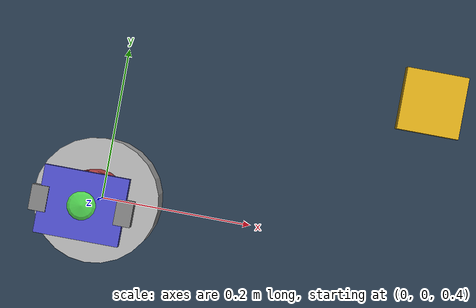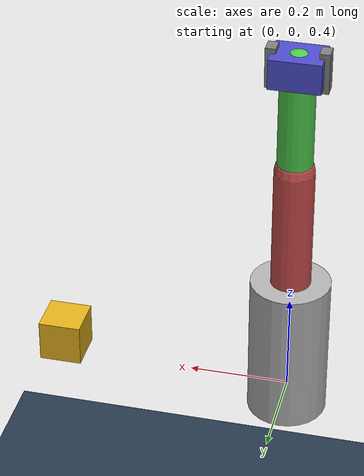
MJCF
<mujoco model="robot_manipulation">
  <option timestep="0.02" iterations="25" solver="Newton" gravity="0 0 -9.81"/>

  <default>
    <geom solref="0.001 0.5" solimp="0.9 0.95 0.001" friction="1.0 0.005 0.0001"/>
    <joint damping="0.5" armature="0.1"/>
  </default>

  <asset>
    <texture type="skybox" builtin="gradient" rgb1="0.3 0.5 0.7" rgb2="0 0 0" width="512" height="512"/>
    <texture name="texplane" type="2d" builtin="checker" rgb1="0.2 0.3 0.4" rgb2="0.1 0.15 0.2" width="512" height="512" mark="cross" markrgb="0.8 0.8 0.8"/>
    <material name="matplane" reflectance="0.3" texture="texplane" texrepeat="1 1" texuniform="true"/>
  </asset>

  <worldbody>
    <light directional="true" diffuse="0.8 0.8 0.8" specular="0.2 0.2 0.2" pos="0 0 5" dir="0 0 -1"/>
    <geom name="ground" type="plane" size="2 2 0.1" material="matplane" condim="3"/>

    <body name="robot_base" pos="0 0 0.5">
      <geom name="base" type="cylinder" size="0.08 0.15" rgba="0.7 0.7 0.7 1" mass="2.5"/>
      <joint name="base_rotate" type="hinge" axis="0 0 1" range="-180 180"/>

      <body name="link1" pos="0 0 0.15">
        <geom name="link1_geom" type="capsule" size="0.04 0.25" rgba="0.8 0.3 0.3 1" mass="1.2"/>
        <joint name="shoulder" type="hinge" axis="0 1 0" range="-120 120"/>

        <body name="link2" pos="0 0 0.25">
          <geom name="link2_geom" type="capsule" size="0.035 0.22" rgba="0.3 0.8 0.3 1" mass="0.8"/>
          <joint name="elbow" type="hinge" axis="0 1 0" range="-150 150"/>

          <body name="gripper" pos="0 0 0.22">
            <geom name="gripper_palm" type="box" size="0.05 0.04 0.03" rgba="0.3 0.3 0.8 1" mass="0.3"/>

            <body name="finger1" pos="0.05 0 0">
              <geom name="finger1_geom" type="box" size="0.01 0.015 0.04" rgba="0.5 0.5 0.5 1" mass="0.05"/>
              <joint name="finger1_joint" type="slide" axis="1 0 0" range="0 0.03"/>
            </body>

            <body name="finger2" pos="-0.05 0 0">
              <geom name="finger2_geom" type="box" size="0.01 0.015 0.04" rgba="0.5 0.5 0.5 1" mass="0.05"/>
              <joint name="finger2_joint" type="slide" axis="-1 0 0" range="0 0.03"/>
            </body>
          </body>
        </body>
      </body>
    </body>

    <body name="target_object" pos="0.4 0.2 0.6">
      <geom name="object" type="box" size="0.04 0.04 0.04" rgba="0.9 0.7 0.1 1" mass="0.15"/>
      <joint name="obj_free" type="free"/>
    </body>
  </worldbody>

  <actuator>
    <motor name="motor_base" joint="base_rotate" gear="50" ctrllimited="true" ctrlrange="-1 1"/>
    <motor name="motor_shoulder" joint="shoulder" gear="100" ctrllimited="true" ctrlrange="-1 1"/>
    <motor name="motor_elbow" joint="elbow" gear="80" ctrllimited="true" ctrlrange="-1 1"/>
    <motor name="motor_finger1" joint="finger1_joint" gear="20" ctrllimited="true" ctrlrange="-1 1"/>
    <motor name="motor_finger2" joint="finger2_joint" gear="20" ctrllimited="true" ctrlrange="-1 1"/>
  </actuator>
</mujoco>
